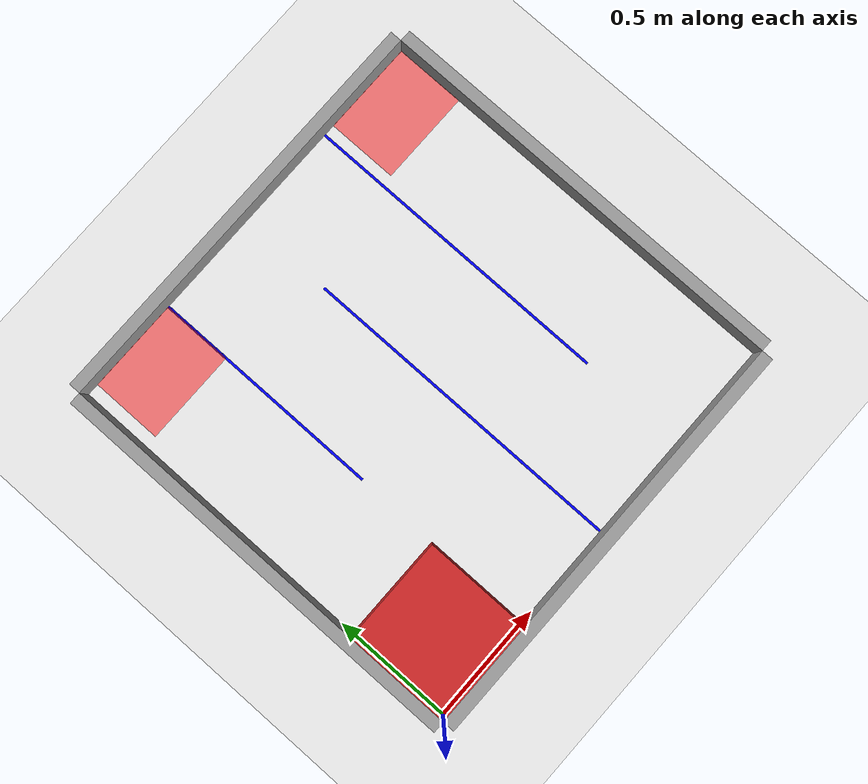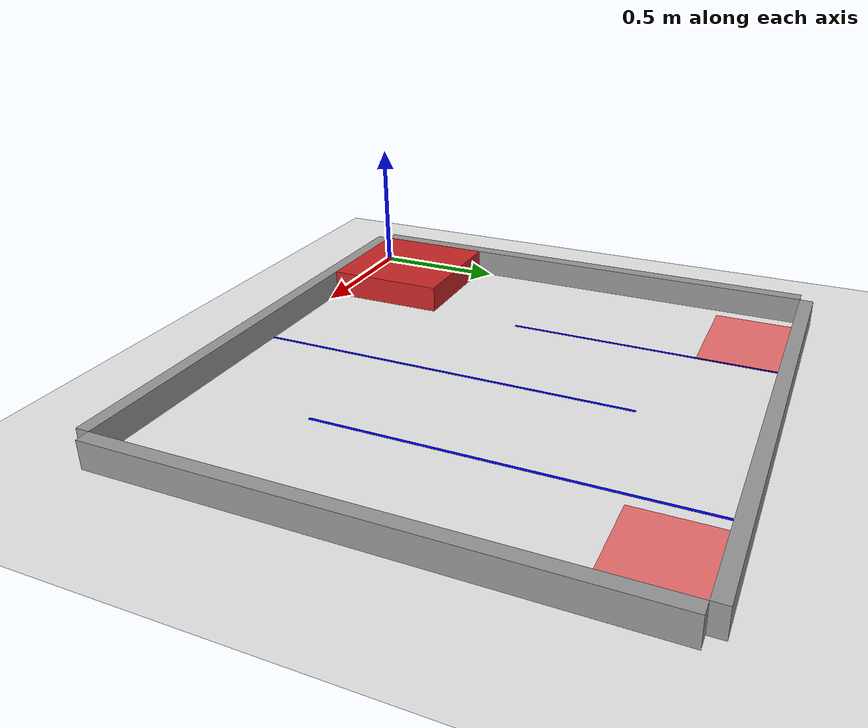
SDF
<?xml version='1.0'?>
<sdf version='1.7'>
  <world name='ebu6350_maze_world'>
    <include><uri>model://sun</uri></include>
    <gravity>0 0 -9.8</gravity>

    <model name='ground_plane'>
      <static>true</static>
      <link name='link'>
        <collision name='collision'><geometry><plane><normal>0 0 1</normal><size>1.8 1.8</size></plane></geometry></collision>
        <visual name='visual'>
          <geometry><plane><normal>0 0 1</normal><size>1.8 1.8</size></plane></geometry>
          <material><script><uri>file://media/materials/scripts/gazebo.material</uri><name>Gazebo/White</name></script></material>
        </visual>
      </link>
    </model>

    <model name='Walls_Container'>
        <static>true</static>

        <link name='wall_AC'>
            <visual name='v'><geometry><box><size>0.05 1.8 0.1</size></box></geometry><material><script><name>Gazebo/Grey</name></script></material></visual>
            <collision name='c'><geometry><box><size>0.05 1.8 0.1</size></box></geometry></collision>
            <pose>-0.025 0.9 0.05 0 0 0</pose>
        </link>

        <link name='wall_DB'>
            <visual name='v'><geometry><box><size>0.05 1.8 0.1</size></box></geometry><material><script><name>Gazebo/Grey</name></script></material></visual>
            <collision name='c'><geometry><box><size>0.05 1.8 0.1</size></box></geometry></collision>
            <pose>1.825 0.9 0.05 0 0 0</pose>
        </link>

        <link name='wall_AB'>
            <visual name='v'><geometry><box><size>1.8 0.05 0.1</size></box></geometry><material><script><name>Gazebo/Grey</name></script></material></visual>
            <collision name='c'><geometry><box><size>1.8 0.05 0.1</size></box></geometry></collision>
            <pose>0.9 -0.025 0.05 0 0 0</pose>
        </link>

        <link name='wall_CD'>
            <visual name='v'><geometry><box><size>1.8 0.05 0.1</size></box></geometry><material><script><name>Gazebo/Grey</name></script></material></visual>
            <collision name='c'><geometry><box><size>1.8 0.05 0.1</size></box></geometry></collision>
            <pose>0.9 1.825 0.05 0 0 0</pose>
        </link>
    </model>

    <model name='Hard_Obstacle_AEFG'>
        <pose>0.225 0.225 0.05 0 0 0</pose> <static>true</static>
        <link name='link'>
            <collision name='collision'>
                <geometry><box><size>0.45 0.45 0.1</size></box></geometry>
            </collision>
            <visual name='visual'>
                <geometry><box><size>0.45 0.45 0.1</size></box></geometry>
                <material><script><name>Gazebo/Red</name></script></material> </visual>
        </link>
    </model>

    <model name='Soft_Obstacles_Lines'>
        <static>true</static>

        <link name='line_HI'>
            <visual name='v'><geometry><box><size>0.01 1.0 0.001</size></box></geometry><material><ambient>0 0 1 1</ambient><diffuse>0 0 1 1</diffuse></material></visual>
            <collision name='c'><geometry><box><size>0.01 1.0 0.001</size></box></geometry></collision>
            <pose>0.45 1.3 0.0005 0 0 0</pose>
        </link>

        <link name='line_KN'>
            <visual name='v'><geometry><box><size>0.01 1.4 0.001</size></box></geometry><material><ambient>0 0 1 1</ambient><diffuse>0 0 1 1</diffuse></material></visual>
            <collision name='c'><geometry><box><size>0.01 1.4 0.001</size></box></geometry></collision>
            <pose>0.9 0.7 0.0005 0 0 0</pose>
        </link>

        <link name='line_ML'>
            <visual name='v'><geometry><box><size>0.01 1.35 0.001</size></box></geometry><material><ambient>0 0 1 1</ambient><diffuse>0 0 1 1</diffuse></material></visual>
            <collision name='c'><geometry><box><size>0.01 1.35 0.001</size></box></geometry></collision>
            <pose>1.35 1.125 0.0005 0 0 0</pose>
        </link>
    </model>

    <model name='Start_Mark'>
        <pose>0.25 1.65 0.001 0 0 0</pose>
        <static>true</static>
        <link name='link'>
            <visual name='v'>
                <geometry><box><size>0.4 0.3 0.001</size></box></geometry>
                <material><ambient>1 0 0 0.5</ambient><diffuse>1 0 0 0.5</diffuse></material>
            </visual>
        </link>
    </model>

    <model name='End_Mark'>
        <pose>1.6 1.65 0.001 0 0 0</pose>
        <static>true</static>
        <link name='link'>
            <visual name='v'>
                <geometry><box><size>0.4 0.3 0.001</size></box></geometry>
                <material><ambient>1 0 0 0.5</ambient><diffuse>1 0 0 0.5</diffuse></material>
            </visual>
        </link>
    </model>

  </world>
</sdf>
